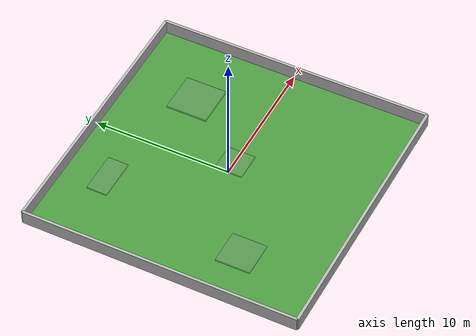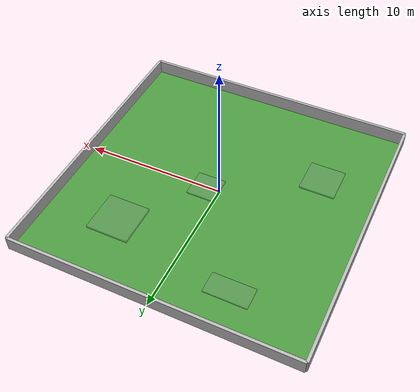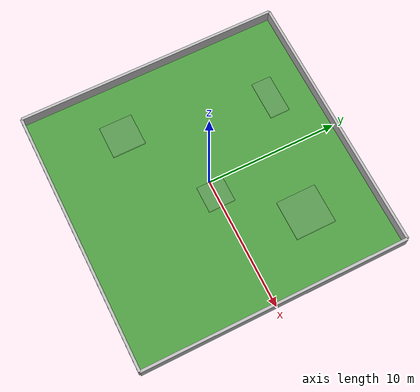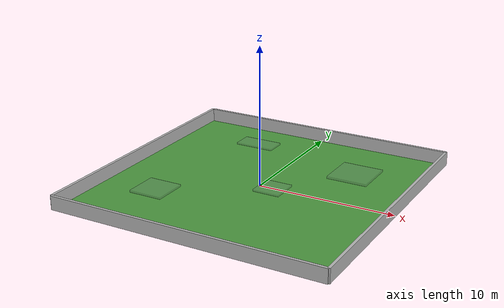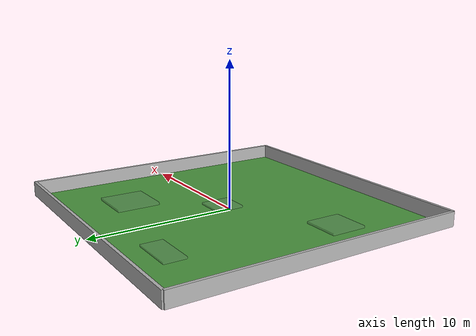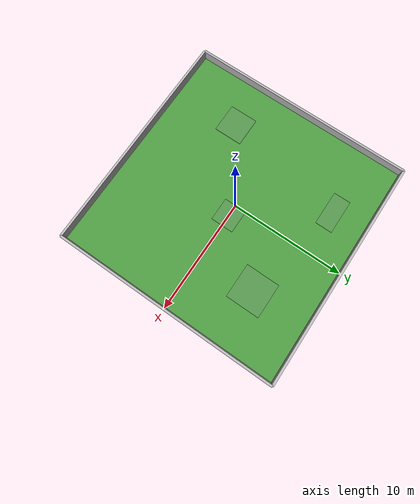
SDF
<sdf version="1.6">
 <world name="lawn_world">
  <include><uri>model://sun</uri></include>
  <model name="grass_plane">
   <static>true</static>
   <link name="link">
    <collision name="collision">
     <geometry><plane><normal>0 0 1</normal><size>20 20</size></plane></geometry>
    </collision>
    <visual name="visual">
     <geometry><plane><normal>0 0 1</normal><size>20 20</size></plane></geometry>
     <material>
      <script><uri>file://media/materials/scripts/gazebo.material</uri><name>Gazebo/Grass</name></script>
     </material>
    </visual>
   </link>
  </model>
  <model name="grass_patch_front">
   <static>true</static>
   <link name="link">
    <collision name="sensor_collision">
     <pose>1.0 0 0.01 0 0 0</pose>
     <geometry><box><size>2 2 0.01</size></box></geometry>
     <surface><contact><collide_without_contact>true</collide_without_contact></contact></surface>
    </collision>
    <visual name="visual">
     <pose>1.0 0 0 0 0 0</pose>
     <geometry><box><size>2 2 0.2</size></box></geometry>
     <material><ambient>0.2 0.35 0.2 0.5</ambient><diffuse>0.4 0.6 0.4 0.5</diffuse></material>
    </visual>
   </link>
  </model>
  <model name="grass_patch_ne">
   <static>true</static>
   <link name="link">
    <collision name="sensor_collision">
     <pose>5 5 0.01 0 0 0</pose>
     <geometry><box><size>3 3 0.01</size></box></geometry>
     <surface><contact><collide_without_contact>true</collide_without_contact></contact></surface>
    </collision>
    <visual name="visual">
     <pose>5 5 0 0 0 0</pose>
     <geometry><box><size>3 3 0.3</size></box></geometry>
     <material><ambient>0.2 0.35 0.2 0.5</ambient><diffuse>0.4 0.6 0.4 0.5</diffuse></material>
    </visual>
   </link>
  </model>
  <model name="grass_patch_sw">
   <static>true</static>
   <link name="link">
    <collision name="sensor_collision">
     <pose>-6 -4 0.01 0 0 0</pose>
     <geometry><box><size>2.5 2.5 0.01</size></box></geometry>
     <surface><contact><collide_without_contact>true</collide_without_contact></contact></surface>
    </collision>
    <visual name="visual">
     <pose>-6 -4 0 0 0 0</pose>
     <geometry><box><size>2.5 2.5 0.25</size></box></geometry>
     <material><ambient>0.2 0.35 0.2 0.5</ambient><diffuse>0.4 0.6 0.4 0.5</diffuse></material>
    </visual>
   </link>
  </model>
  <model name="grass_patch_nw">
   <static>true</static>
   <link name="link">
    <collision name="sensor_collision">
     <pose>-4 7 0.01 0 0 0</pose>
     <geometry><box><size>3 1.5 0.01</size></box></geometry>
     <surface><contact><collide_without_contact>true</collide_without_contact></contact></surface>
    </collision>
    <visual name="visual">
     <pose>-4 7 0 0 0 0</pose>
     <geometry><box><size>3 1.5 0.2</size></box></geometry>
     <material><ambient>0.2 0.35 0.2 0.5</ambient><diffuse>0.4 0.6 0.4 0.5</diffuse></material>
    </visual>
   </link>
  </model>
  <model name="wall_north">
   <static>true</static>
   <link name="link">
    <pose>0 10 0.5 0 0 0</pose>
    <collision name="collision"><geometry><box><size>20 0.2 1</size></box></geometry></collision>
    <visual name="visual"><geometry><box><size>20 0.2 1</size></box></geometry></visual>
   </link>
  </model>
  <model name="wall_south">
   <static>true</static>
   <link name="link">
    <pose>0 -10 0.5 0 0 0</pose>
    <collision name="collision"><geometry><box><size>20 0.2 1</size></box></geometry></collision>
    <visual name="visual"><geometry><box><size>20 0.2 1</size></box></geometry></visual>
   </link>
  </model>
  <model name="wall_east">
   <static>true</static>
   <link name="link">
    <pose>10 0 0.5 0 0 0</pose>
    <collision name="collision"><geometry><box><size>0.2 20 1</size></box></geometry></collision>
    <visual name="visual"><geometry><box><size>0.2 20 1</size></box></geometry></visual>
   </link>
  </model>
  <model name="wall_west">
   <static>true</static>
   <link name="link">
    <pose>-10 0 0.5 0 0 0</pose>
    <collision name="collision"><geometry><box><size>0.2 20 1</size></box></geometry></collision>
    <visual name="visual"><geometry><box><size>0.2 20 1</size></box></geometry></visual>
   </link>
  </model>
 </world>
</sdf>
